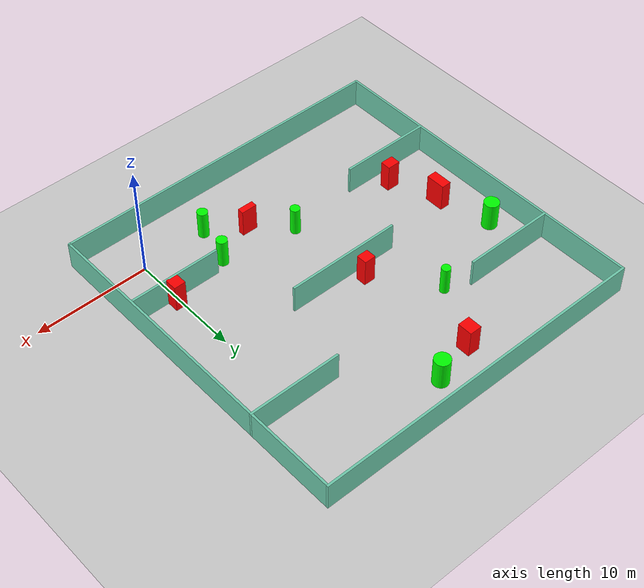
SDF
<sdf version="1.7">
 <world name="default">
  <light name="sun" type="directional">
   <pose>0 0 10 0 -0 0</pose>
   <diffuse>0.8 0.8 0.8 1</diffuse>
   <specular>0.2 0.2 0.2 1</specular>
   <attenuation>
    <range>1000</range>
    <constant>0.9</constant>
    <linear>0.01</linear>
    <quadratic>0.001</quadratic>
   </attenuation>
   <direction>-0.5 0.1 -0.9</direction>
   <spot><inner_angle>0</inner_angle><outer_angle>0</outer_angle><falloff>0</falloff></spot>
  </light>
  <model name="ground_plane">
   <static>1</static>
   <link name="link">
    <collision name="collision">
     <geometry><plane><normal>0 0 1</normal><size>100 100</size></plane></geometry>
     <surface>
      <contact><collide_bitmask>65535</collide_bitmask></contact>
      <friction><ode><mu>100</mu><mu2>50</mu2></ode></friction>
     </surface>
    </collision>
    <visual name="visual">
     <cast_shadows>0</cast_shadows>
     <geometry><plane><normal>0 0 1</normal><size>100 100</size></plane></geometry>
     <material>
      <script><uri>file://media/materials/scripts/gazebo.material</uri><name>Gazebo/Grey</name></script>
     </material>
    </visual>
   </link>
  </model>
  <gravity>0 0 -9.8</gravity>
  <magnetic_field>6e-06 2.3e-05 -4.2e-05</magnetic_field>
  <atmosphere type="adiabatic"/>
  <physics type="ode">
   <max_step_size>0.001</max_step_size>
   <real_time_factor>1</real_time_factor>
   <real_time_update_rate>1000</real_time_update_rate>
  </physics>
  <scene><ambient>0.4 0.4 0.4 1</ambient><background>0.7 0.7 0.7 1</background><shadows>1</shadows></scene>
  <spherical_coordinates>
   <surface_model>EARTH_WGS84</surface_model>
   <latitude_deg>0</latitude_deg>
   <longitude_deg>0</longitude_deg>
   <elevation>0</elevation>
   <heading_deg>0</heading_deg>
  </spherical_coordinates>
  <model name="my_base_walls">
   <link name="Wall_10">
    <collision name="Wall_10_Collision">
     <geometry><box><size>8.2 0.2 2.5</size></box></geometry>
     <pose>0 0 1.25 0 -0 0</pose>
    </collision>
    <visual name="Wall_10_Visual">
     <pose>0 0 1.25 0 -0 0</pose>
     <geometry><box><size>8.2 0.2 2.5</size></box></geometry>
     <material>
      <script><uri>file://media/materials/scripts/gazebo.material</uri><name>Gazebo/Grey</name></script>
      <ambient>0.435294 0.796078 0.67451 1</ambient>
     </material>
     <meta><layer>0</layer></meta>
    </visual>
    <pose>-11 -7 0 0 -0 0</pose>
   </link>
   <link name="Wall_12">
    <collision name="Wall_12_Collision">
     <geometry><box><size>8.2 0.2 2.5</size></box></geometry>
     <pose>0 0 1.25 0 -0 0</pose>
    </collision>
    <visual name="Wall_12_Visual">
     <pose>0 0 1.25 0 -0 0</pose>
     <geometry><box><size>8.2 0.2 2.5</size></box></geometry>
     <material>
      <script><uri>file://media/materials/scripts/gazebo.material</uri><name>Gazebo/Grey</name></script>
      <ambient>0.435294 0.796078 0.67451 1</ambient>
     </material>
     <meta><layer>0</layer></meta>
    </visual>
    <pose>-11 7 0 0 -0 0</pose>
   </link>
   <link name="Wall_14">
    <collision name="Wall_14_Collision">
     <geometry><box><size>8.2 0.2 2.5</size></box></geometry>
     <pose>0 0 1.25 0 -0 0</pose>
    </collision>
    <visual name="Wall_14_Visual">
     <pose>0 0 1.25 0 -0 0</pose>
     <geometry><box><size>8.2 0.2 2.5</size></box></geometry>
     <material>
      <script><uri>file://media/materials/scripts/gazebo.material</uri><name>Gazebo/Grey</name></script>
      <ambient>0.435294 0.796078 0.67451 1</ambient>
     </material>
     <meta><layer>0</layer></meta>
    </visual>
    <pose>11 7 0 0 -0 3.14159</pose>
   </link>
   <link name="Wall_16">
    <collision name="Wall_16_Collision">
     <geometry><box><size>10.2 0.2 2.5</size></box></geometry>
     <pose>0 0 1.25 0 -0 0</pose>
    </collision>
    <visual name="Wall_16_Visual">
     <pose>0 0 1.25 0 -0 0</pose>
     <geometry><box><size>10.2 0.2 2.5</size></box></geometry>
     <material>
      <script><uri>file://media/materials/scripts/gazebo.material</uri><name>Gazebo/Grey</name></script>
      <ambient>0.435294 0.796078 0.67451 1</ambient>
     </material>
     <meta><layer>0</layer></meta>
    </visual>
    <pose>0 0 0 0 -0 3.14159</pose>
   </link>
   <link name="Wall_2">
    <collision name="Wall_2_Collision">
     <geometry><box><size>30.2 0.2 2.5</size></box></geometry>
     <pose>0 0 1.25 0 -0 0</pose>
    </collision>
    <visual name="Wall_2_Visual">
     <pose>0 0 1.25 0 -0 0</pose>
     <geometry><box><size>30.2 0.2 2.5</size></box></geometry>
     <material>
      <script><uri>file://media/materials/scripts/gazebo.material</uri><name>Gazebo/Grey</name></script>
      <ambient>0.435294 0.796078 0.67451 1</ambient>
     </material>
     <meta><layer>0</layer></meta>
    </visual>
    <pose>0 -15 0 0 -0 3.14159</pose>
   </link>
   <link name="Wall_3">
    <collision name="Wall_3_Collision">
     <geometry><box><size>30.2 0.2 2.5</size></box></geometry>
     <pose>0 0 1.25 0 -0 0</pose>
    </collision>
    <visual name="Wall_3_Visual">
     <pose>0 0 1.25 0 -0 0</pose>
     <geometry><box><size>30.2 0.2 2.5</size></box></geometry>
     <material>
      <script><uri>file://media/materials/scripts/gazebo.material</uri><name>Gazebo/Grey</name></script>
      <ambient>0.435294 0.796078 0.67451 1</ambient>
     </material>
     <meta><layer>0</layer></meta>
    </visual>
    <pose>-15 0 0 0 -0 1.5708</pose>
   </link>
   <link name="Wall_4">
    <collision name="Wall_4_Collision">
     <geometry><box><size>30.2 0.2 2.5</size></box></geometry>
     <pose>0 0 1.25 0 -0 0</pose>
    </collision>
    <visual name="Wall_4_Visual">
     <pose>0 0 1.25 0 -0 0</pose>
     <geometry><box><size>30.2 0.2 2.5</size></box></geometry>
     <material>
      <script><uri>file://media/materials/scripts/gazebo.material</uri><name>Gazebo/Grey</name></script>
      <ambient>0.435294 0.796078 0.67451 1</ambient>
     </material>
     <meta><layer>0</layer></meta>
    </visual>
    <pose>0 15 0 0 -0 0</pose>
   </link>
   <link name="Wall_6">
    <collision name="Wall_6_Collision">
     <geometry><box><size>30.2 0.2 2.5</size></box></geometry>
     <pose>0 0 1.25 0 -0 0</pose>
    </collision>
    <visual name="Wall_6_Visual">
     <pose>0 0 1.25 0 -0 0</pose>
     <geometry><box><size>30.2 0.2 2.5</size></box></geometry>
     <material>
      <script><uri>file://media/materials/scripts/gazebo.material</uri><name>Gazebo/Grey</name></script>
      <ambient>0.435294 0.796078 0.67451 1</ambient>
     </material>
     <meta><layer>0</layer></meta>
    </visual>
    <pose>15 0 0 0 -0 1.5708</pose>
   </link>
   <link name="Wall_8">
    <collision name="Wall_8_Collision">
     <geometry><box><size>8.2 0.2 2.5</size></box></geometry>
     <pose>0 0 1.25 0 -0 0</pose>
    </collision>
    <visual name="Wall_8_Visual">
     <pose>0 0 1.25 0 -0 0</pose>
     <geometry><box><size>8.2 0.2 2.5</size></box></geometry>
     <material>
      <script><uri>file://media/materials/scripts/gazebo.material</uri><name>Gazebo/Grey</name></script>
      <ambient>0.435294 0.796078 0.67451 1</ambient>
     </material>
     <meta><layer>0</layer></meta>
    </visual>
    <pose>11 -7 0 0 -0 3.14159</pose>
   </link>
   <static>1</static>
   <pose>-11 11 0 0 -0 0</pose>
  </model>
  <model name="cylinder1">
   <static>1</static>
   <link name="link">
    <inertial>
     <mass>1</mass>
     <inertia><ixx>0.5</ixx><ixy>0</ixy><ixz>0</ixz><iyy>0.5</iyy><iyz>0</iyz><izz>1</izz></inertia>
    </inertial>
    <collision name="collision">
     <geometry><cylinder><radius>0.45526527127332983</radius><length>2.5</length></cylinder></geometry>
    </collision>
    <visual name="visual">
     <geometry><cylinder><radius>0.45526527127332983</radius><length>2.5</length></cylinder></geometry>
     <material>
      <ambient>0 1 0 1</ambient>
      <diffuse>0 1 0 1</diffuse>
      <specular>0.1 0.1 0.1 1</specular>
      <emissive>0 0 0 0</emissive>
     </material>
    </visual>
   </link>
   <pose>-5.872192440887005 -0.029523620654010152 1.25 0 0 0</pose>
  </model>
  <model name="cylinder2">
   <static>1</static>
   <link name="link">
    <inertial>
     <mass>1</mass>
     <inertia><ixx>0.5</ixx><ixy>0</ixy><ixz>0</ixz><iyy>0.5</iyy><iyz>0</iyz><izz>1</izz></inertia>
    </inertial>
    <collision name="collision">
     <geometry><cylinder><radius>0.6558689794085163</radius><length>2.5</length></cylinder></geometry>
    </collision>
    <visual name="visual">
     <geometry><cylinder><radius>0.6558689794085163</radius><length>2.5</length></cylinder></geometry>
     <material>
      <ambient>0 1 0 1</ambient>
      <diffuse>0 1 0 1</diffuse>
      <specular>0.1 0.1 0.1 1</specular>
      <emissive>0 0 0 0</emissive>
     </material>
    </visual>
   </link>
   <pose>-23.787834119073086 14.360669544574133 1.25 0 0 0</pose>
  </model>
  <model name="cylinder3">
   <static>1</static>
   <link name="link">
    <inertial>
     <mass>1</mass>
     <inertia><ixx>0.5</ixx><ixy>0</ixy><ixz>0</ixz><iyy>0.5</iyy><iyz>0</iyz><izz>1</izz></inertia>
    </inertial>
    <collision name="collision">
     <geometry><cylinder><radius>0.6820440279744886</radius><length>2.5</length></cylinder></geometry>
    </collision>
    <visual name="visual">
     <geometry><cylinder><radius>0.6820440279744886</radius><length>2.5</length></cylinder></geometry>
     <material>
      <ambient>0 1 0 1</ambient>
      <diffuse>0 1 0 1</diffuse>
      <specular>0.1 0.1 0.1 1</specular>
      <emissive>0 0 0 0</emissive>
     </material>
    </visual>
   </link>
   <pose>-9.378054985141391 23.29757740577077 1.25 0 0 0</pose>
  </model>
  <model name="cylinder4">
   <static>1</static>
   <link name="link">
    <inertial>
     <mass>1</mass>
     <inertia><ixx>0.5</ixx><ixy>0</ixy><ixz>0</ixz><iyy>0.5</iyy><iyz>0</iyz><izz>1</izz></inertia>
    </inertial>
    <collision name="collision">
     <geometry><cylinder><radius>0.3904881286766093</radius><length>2.5</length></cylinder></geometry>
    </collision>
    <visual name="visual">
     <geometry><cylinder><radius>0.3904881286766093</radius><length>2.5</length></cylinder></geometry>
     <material>
      <ambient>0 1 0 1</ambient>
      <diffuse>0 1 0 1</diffuse>
      <specular>0.1 0.1 0.1 1</specular>
      <emissive>0 0 0 0</emissive>
     </material>
    </visual>
   </link>
   <pose>-15.968524775672217 17.070804875435027 1.25 0 0 0</pose>
  </model>
  <model name="cylinder5">
   <static>1</static>
   <link name="link">
    <inertial>
     <mass>1</mass>
     <inertia><ixx>0.5</ixx><ixy>0</ixy><ixz>0</ixz><iyy>0.5</iyy><iyz>0</iyz><izz>1</izz></inertia>
    </inertial>
    <collision name="collision">
     <geometry><cylinder><radius>0.467409634082796</radius><length>2.5</length></cylinder></geometry>
    </collision>
    <visual name="visual">
     <geometry><cylinder><radius>0.467409634082796</radius><length>2.5</length></cylinder></geometry>
     <material>
      <ambient>0 1 0 1</ambient>
      <diffuse>0 1 0 1</diffuse>
      <specular>0.1 0.1 0.1 1</specular>
      <emissive>0 0 0 0</emissive>
     </material>
    </visual>
   </link>
   <pose>-5.081729736008711 3.4146301300397717 1.25 0 0 0</pose>
  </model>
  <model name="cylinder6">
   <static>1</static>
   <link name="link">
    <inertial>
     <mass>1</mass>
     <inertia><ixx>0.5</ixx><ixy>0</ixy><ixz>0</ixz><iyy>0.5</iyy><iyz>0</iyz><izz>1</izz></inertia>
    </inertial>
    <collision name="collision">
     <geometry><cylinder><radius>0.4221496999596852</radius><length>2.5</length></cylinder></geometry>
    </collision>
    <visual name="visual">
     <geometry><cylinder><radius>0.4221496999596852</radius><length>2.5</length></cylinder></geometry>
     <material>
      <ambient>0 1 0 1</ambient>
      <diffuse>0 1 0 1</diffuse>
      <specular>0.1 0.1 0.1 1</specular>
      <emissive>0 0 0 0</emissive>
     </material>
    </visual>
   </link>
   <pose>-11.625188401287822 4.532690962409346 1.25 0 0 0</pose>
  </model>
  <model name="box1">
   <static>1</static>
   <link name="link">
    <inertial>
     <mass>1</mass>
     <inertia><ixx>0.083</ixx><ixy>0</ixy><ixz>0</ixz><iyy>0.083</iyy><iyz>0</iyz><izz>0.083</izz></inertia>
    </inertial>
    <collision name="collision">
     <geometry><box><size>1.3969352401634758 0.5546927673128732 2.5</size></box></geometry>
    </collision>
    <visual name="visual">
     <geometry><box><size>1.3969352401634758 0.5546927673128732 2.5</size></box></geometry>
     <material>
      <ambient>1 0 0 1</ambient>
      <diffuse>1 0 0 1</diffuse>
      <specular>0.1 0.1 0.1 1</specular>
      <emissive>0 0 0 0</emissive>
     </material>
    </visual>
    <sensor name="my_contact" type="contact">
     <contact><collision>box_collision</collision><topic>__default_topic__</topic></contact>
    </sensor>
   </link>
   <pose>-8.85120383352634 1.9289794892309517 1.25 0 0 0</pose>
  </model>
  <model name="box2">
   <static>1</static>
   <link name="link">
    <inertial>
     <mass>1</mass>
     <inertia><ixx>0.083</ixx><ixy>0</ixy><ixz>0</ixz><iyy>0.083</iyy><iyz>0</iyz><izz>0.083</izz></inertia>
    </inertial>
    <collision name="collision">
     <geometry><box><size>0.8748618213584007 1.7177283251038813 2.5</size></box></geometry>
    </collision>
    <visual name="visual">
     <geometry><box><size>0.8748618213584007 1.7177283251038813 2.5</size></box></geometry>
     <material>
      <ambient>1 0 0 1</ambient>
      <diffuse>1 0 0 1</diffuse>
      <specular>0.1 0.1 0.1 1</specular>
      <emissive>0 0 0 0</emissive>
     </material>
    </visual>
    <sensor name="my_contact" type="contact">
     <contact><collision>box_collision</collision><topic>__default_topic__</topic></contact>
    </sensor>
   </link>
   <pose>-22.509078404555847 9.714250655415409 1.25 0 0 0</pose>
  </model>
  <model name="box3">
   <static>1</static>
   <link name="link">
    <inertial>
     <mass>1</mass>
     <inertia><ixx>0.083</ixx><ixy>0</ixy><ixz>0</ixz><iyy>0.083</iyy><iyz>0</iyz><izz>0.083</izz></inertia>
    </inertial>
    <collision name="collision">
     <geometry><box><size>1.0846862814108666 1.2804282507034448 2.5</size></box></geometry>
    </collision>
    <visual name="visual">
     <geometry><box><size>1.0846862814108666 1.2804282507034448 2.5</size></box></geometry>
     <material>
      <ambient>1 0 0 1</ambient>
      <diffuse>1 0 0 1</diffuse>
      <specular>0.1 0.1 0.1 1</specular>
      <emissive>0 0 0 0</emissive>
     </material>
    </visual>
    <sensor name="my_contact" type="contact">
     <contact><collision>box_collision</collision><topic>__default_topic__</topic></contact>
    </sensor>
   </link>
   <pose>-13.126729555854304 22.355783924082232 1.25 0 0 0</pose>
  </model>
  <model name="box4">
   <static>1</static>
   <link name="link">
    <inertial>
     <mass>1</mass>
     <inertia><ixx>0.083</ixx><ixy>0</ixy><ixz>0</ixz><iyy>0.083</iyy><iyz>0</iyz><izz>0.083</izz></inertia>
    </inertial>
    <collision name="collision">
     <geometry><box><size>1.02463672960581 0.9309078230804101 2.5</size></box></geometry>
    </collision>
    <visual name="visual">
     <geometry><box><size>1.02463672960581 0.9309078230804101 2.5</size></box></geometry>
     <material>
      <ambient>1 0 0 1</ambient>
      <diffuse>1 0 0 1</diffuse>
      <specular>0.1 0.1 0.1 1</specular>
      <emissive>0 0 0 0</emissive>
     </material>
    </visual>
    <sensor name="my_contact" type="contact">
     <contact><collision>box_collision</collision><topic>__default_topic__</topic></contact>
    </sensor>
   </link>
   <pose>-12.24192994737839 12.159581630939298 1.25 0 0 0</pose>
  </model>
  <model name="box5">
   <static>1</static>
   <link name="link">
    <inertial>
     <mass>1</mass>
     <inertia><ixx>0.083</ixx><ixy>0</ixy><ixz>0</ixz><iyy>0.083</iyy><iyz>0</iyz><izz>0.083</izz></inertia>
    </inertial>
    <collision name="collision">
     <geometry><box><size>1.0164242321839005 1.0688118915911784 2.5</size></box></geometry>
    </collision>
    <visual name="visual">
     <geometry><box><size>1.0164242321839005 1.0688118915911784 2.5</size></box></geometry>
     <material>
      <ambient>1 0 0 1</ambient>
      <diffuse>1 0 0 1</diffuse>
      <specular>0.1 0.1 0.1 1</specular>
      <emissive>0 0 0 0</emissive>
     </material>
    </visual>
    <sensor name="my_contact" type="contact">
     <contact><collision>box_collision</collision><topic>__default_topic__</topic></contact>
    </sensor>
   </link>
   <pose>0.2823640405414345 4.575979673331862 1.25 0 0 0</pose>
  </model>
  <model name="box6">
   <static>1</static>
   <link name="link">
    <inertial>
     <mass>1</mass>
     <inertia><ixx>0.083</ixx><ixy>0</ixy><ixz>0</ixz><iyy>0.083</iyy><iyz>0</iyz><izz>0.083</izz></inertia>
    </inertial>
    <collision name="collision">
     <geometry><box><size>1.1418458510719696 0.9008534869492442 2.5</size></box></geometry>
    </collision>
    <visual name="visual">
     <geometry><box><size>1.1418458510719696 0.9008534869492442 2.5</size></box></geometry>
     <material>
      <ambient>1 0 0 1</ambient>
      <diffuse>1 0 0 1</diffuse>
      <specular>0.1 0.1 0.1 1</specular>
      <emissive>0 0 0 0</emissive>
     </material>
    </visual>
    <sensor name="my_contact" type="contact">
     <contact><collision>box_collision</collision><topic>__default_topic__</topic></contact>
    </sensor>
   </link>
   <pose>-20.97690376424436 5.611844493707249 1.25 0 0 0</pose>
  </model>
 </world>
</sdf>
